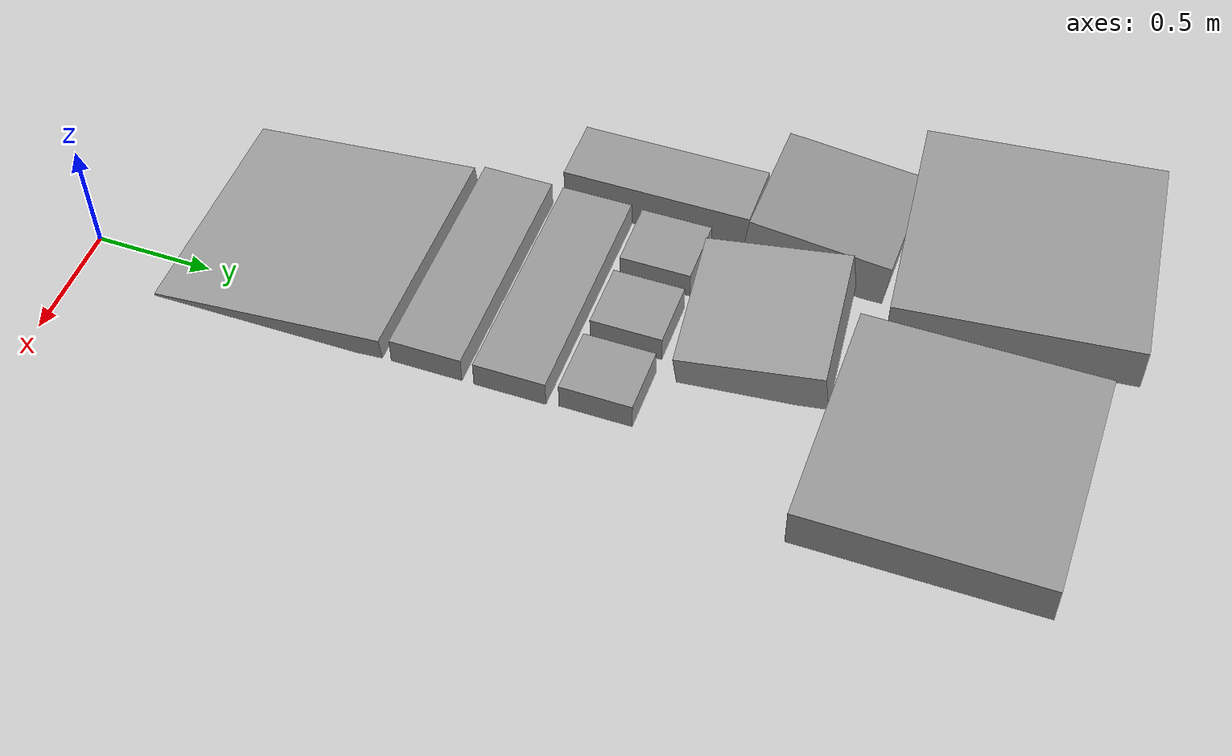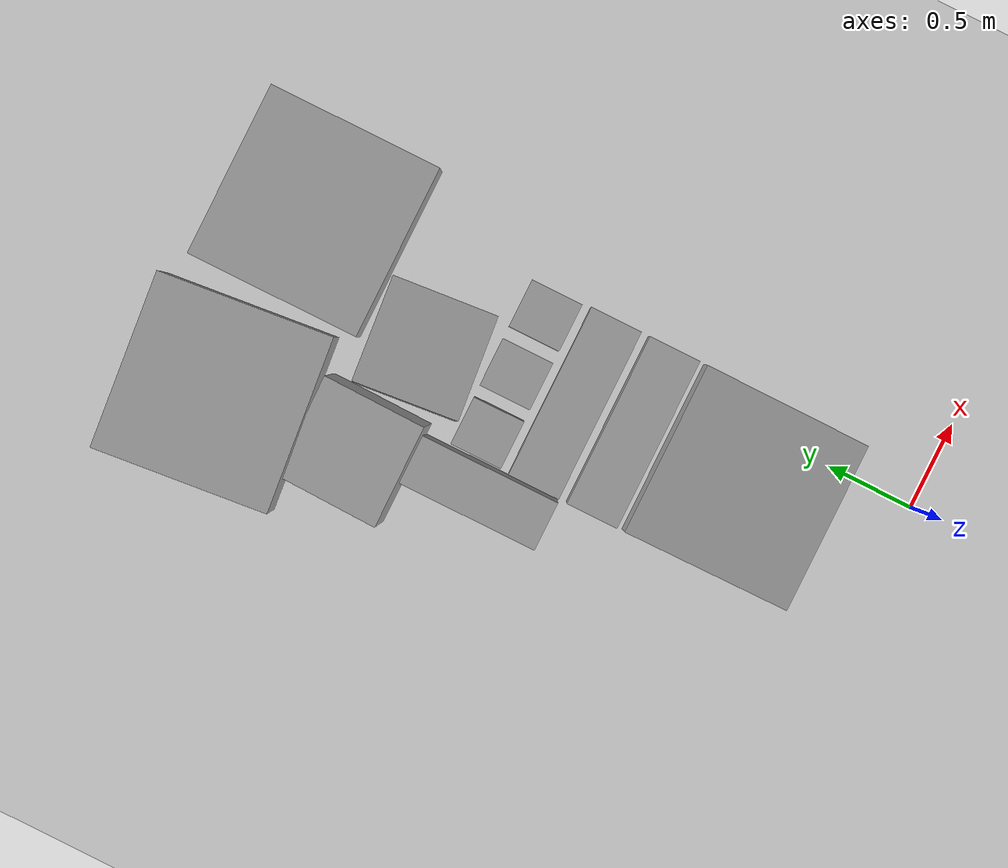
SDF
<sdf version="1.7">
 <world name="default">
  <light name="sun" type="directional">
   <pose>0 0 10 0 -0 0</pose>
   <diffuse>0.8 0.8 0.8 1</diffuse>
   <specular>0.2 0.2 0.2 1</specular>
   <attenuation>
    <range>1000</range>
    <constant>0.9</constant>
    <linear>0.01</linear>
    <quadratic>0.001</quadratic>
   </attenuation>
   <direction>-0.5 0.1 -0.9</direction>
   <spot><inner_angle>0</inner_angle><outer_angle>0</outer_angle><falloff>0</falloff></spot>
  </light>
  <model name="ground_plane">
   <static>1</static>
   <link name="link">
    <collision name="collision">
     <geometry><plane><normal>0 0 1</normal><size>100 100</size></plane></geometry>
     <surface>
      <contact><collide_bitmask>65535</collide_bitmask></contact>
      <friction><ode><mu>100</mu><mu2>50</mu2></ode></friction>
     </surface>
    </collision>
    <visual name="visual">
     <cast_shadows>0</cast_shadows>
     <geometry><plane><normal>0 0 1</normal><size>100 100</size></plane></geometry>
     <material>
      <script><uri>file://media/materials/scripts/gazebo.material</uri><name>Gazebo/Grey</name></script>
     </material>
    </visual>
   </link>
  </model>
  <gravity>0 0 -9.8</gravity>
  <magnetic_field>6e-06 2.3e-05 -4.2e-05</magnetic_field>
  <atmosphere type="adiabatic"/>
  <physics type="ode">
   <max_step_size>0.001</max_step_size>
   <real_time_factor>1</real_time_factor>
   <real_time_update_rate>1000</real_time_update_rate>
   <enable_physics>false</enable_physics>
  </physics>
  <scene><ambient>0.4 0.4 0.4 1</ambient><background>0.7 0.7 0.7 1</background><shadows>1</shadows></scene>
  <spherical_coordinates>
   <surface_model>EARTH_WGS84</surface_model>
   <latitude_deg>0</latitude_deg>
   <longitude_deg>0</longitude_deg>
   <elevation>0</elevation>
   <heading_deg>0</heading_deg>
  </spherical_coordinates>
  <model name="terrain">
   <link name="link_0">
    <inertial>
     <mass>1</mass>
     <inertia>
      <ixx>0.166667</ixx>
      <ixy>0</ixy>
      <ixz>0</ixz>
      <iyy>0.166667</iyy>
      <iyz>0</iyz>
      <izz>0.166667</izz>
     </inertia>
    </inertial>
    <pose>0.181818 -0.819091 -0.01 0 -0 0</pose>
    <visual name="visual">
     <geometry><box><size>1 0.3 0.12</size></box></geometry>
     <material>
      <lighting>1</lighting>
      <script><uri>file://media/materials/scripts/gazebo.material</uri><name>Gazebo/Grey</name></script>
      <shader type="pixel"><normal_map>__default__</normal_map></shader>
      <ambient>0.3 0.3 0.3 1</ambient>
      <diffuse>0.7 0.7 0.7 1</diffuse>
      <specular>0.01 0.01 0.01 1</specular>
      <emissive>0 0 0 1</emissive>
     </material>
    </visual>
    <collision name="collision">
     <geometry><box><size>1 1 1</size></box></geometry>
     <surface>
      <friction>
       <ode><mu>1</mu><mu2>1</mu2><fdir1>0 0 0</fdir1><slip1>0</slip1><slip2>0</slip2></ode>
       <torsional>
        <coefficient>1</coefficient>
        <patch_radius>0</patch_radius>
        <surface_radius>0</surface_radius>
        <use_patch_radius>1</use_patch_radius>
        <ode><slip>0</slip></ode>
       </torsional>
      </friction>
      <bounce><restitution_coefficient>0</restitution_coefficient><threshold>1e+06</threshold></bounce>
      <contact>
       <collide_without_contact>0</collide_without_contact>
       <collide_without_contact_bitmask>1</collide_without_contact_bitmask>
       <collide_bitmask>1</collide_bitmask>
       <ode>
        <soft_cfm>0</soft_cfm>
        <soft_erp>0.2</soft_erp>
        <kp>1e+13</kp>
        <kd>1</kd>
        <max_vel>0.01</max_vel>
        <min_depth>0</min_depth>
       </ode>
       <bullet>
        <split_impulse>1</split_impulse>
        <split_impulse_penetration_threshold>-0.01</split_impulse_penetration_threshold>
        <soft_cfm>0</soft_cfm>
        <soft_erp>0.2</soft_erp>
        <kp>1e+13</kp>
        <kd>1</kd>
       </bullet>
      </contact>
     </surface>
    </collision>
   </link>
   <link name="link_0_clone">
    <inertial>
     <mass>1</mass>
     <inertia>
      <ixx>0.166667</ixx>
      <ixy>0</ixy>
      <ixz>0</ixz>
      <iyy>0.166667</iyy>
      <iyz>0</iyz>
      <izz>0.166667</izz>
     </inertia>
    </inertial>
    <pose>0.181818 -0.469091 -0.01 0 -0 0</pose>
    <visual name="visual">
     <geometry><box><size>1 0.3 0.12</size></box></geometry>
     <material>
      <lighting>1</lighting>
      <script><uri>file://media/materials/scripts/gazebo.material</uri><name>Gazebo/Grey</name></script>
      <shader type="pixel"><normal_map>__default__</normal_map></shader>
      <ambient>0.3 0.3 0.3 1</ambient>
      <diffuse>0.7 0.7 0.7 1</diffuse>
      <specular>0.01 0.01 0.01 1</specular>
      <emissive>0 0 0 1</emissive>
     </material>
    </visual>
    <collision name="collision">
     <geometry><box><size>1 1 1</size></box></geometry>
     <surface>
      <friction>
       <ode><mu>1</mu><mu2>1</mu2><fdir1>0 0 0</fdir1><slip1>0</slip1><slip2>0</slip2></ode>
       <torsional>
        <coefficient>1</coefficient>
        <patch_radius>0</patch_radius>
        <surface_radius>0</surface_radius>
        <use_patch_radius>1</use_patch_radius>
        <ode><slip>0</slip></ode>
       </torsional>
      </friction>
      <bounce><restitution_coefficient>0</restitution_coefficient><threshold>1e+06</threshold></bounce>
      <contact>
       <collide_without_contact>0</collide_without_contact>
       <collide_without_contact_bitmask>1</collide_without_contact_bitmask>
       <collide_bitmask>1</collide_bitmask>
       <ode>
        <soft_cfm>0</soft_cfm>
        <soft_erp>0.2</soft_erp>
        <kp>1e+13</kp>
        <kd>1</kd>
        <max_vel>0.01</max_vel>
        <min_depth>0</min_depth>
       </ode>
       <bullet>
        <split_impulse>1</split_impulse>
        <split_impulse_penetration_threshold>-0.01</split_impulse_penetration_threshold>
        <soft_cfm>0</soft_cfm>
        <soft_erp>0.2</soft_erp>
        <kp>1e+13</kp>
        <kd>1</kd>
       </bullet>
      </contact>
     </surface>
    </collision>
   </link>
   <link name="link_1">
    <inertial>
     <mass>1</mass>
     <inertia>
      <ixx>0.166667</ixx>
      <ixy>0</ixy>
      <ixz>0</ixz>
      <iyy>0.166667</iyy>
      <iyz>0</iyz>
      <izz>0.166667</izz>
     </inertia>
    </inertial>
    <pose>-0.168182 -0.119091 -0.01 0 -0 0</pose>
    <visual name="visual">
     <geometry><box><size>0.28 0.3 0.12</size></box></geometry>
     <material>
      <lighting>1</lighting>
      <script><uri>file://media/materials/scripts/gazebo.material</uri><name>Gazebo/Grey</name></script>
      <shader type="pixel"><normal_map>__default__</normal_map></shader>
      <ambient>0.3 0.3 0.3 1</ambient>
      <diffuse>0.7 0.7 0.7 1</diffuse>
      <specular>0.01 0.01 0.01 1</specular>
      <emissive>0 0 0 1</emissive>
     </material>
    </visual>
    <collision name="collision">
     <geometry><box><size>1 1 1</size></box></geometry>
     <surface>
      <friction>
       <ode><mu>1</mu><mu2>1</mu2><fdir1>0 0 0</fdir1><slip1>0</slip1><slip2>0</slip2></ode>
       <torsional>
        <coefficient>1</coefficient>
        <patch_radius>0</patch_radius>
        <surface_radius>0</surface_radius>
        <use_patch_radius>1</use_patch_radius>
        <ode><slip>0</slip></ode>
       </torsional>
      </friction>
      <bounce><restitution_coefficient>0</restitution_coefficient><threshold>1e+06</threshold></bounce>
      <contact>
       <collide_without_contact>0</collide_without_contact>
       <collide_without_contact_bitmask>1</collide_without_contact_bitmask>
       <collide_bitmask>1</collide_bitmask>
       <ode>
        <soft_cfm>0</soft_cfm>
        <soft_erp>0.2</soft_erp>
        <kp>1e+13</kp>
        <kd>1</kd>
        <max_vel>0.01</max_vel>
        <min_depth>0</min_depth>
       </ode>
       <bullet>
        <split_impulse>1</split_impulse>
        <split_impulse_penetration_threshold>-0.01</split_impulse_penetration_threshold>
        <soft_cfm>0</soft_cfm>
        <soft_erp>0.2</soft_erp>
        <kp>1e+13</kp>
        <kd>1</kd>
       </bullet>
      </contact>
     </surface>
    </collision>
   </link>
   <link name="link_1_clone">
    <inertial>
     <mass>1</mass>
     <inertia>
      <ixx>0.166667</ixx>
      <ixy>0</ixy>
      <ixz>0</ixz>
      <iyy>0.166667</iyy>
      <iyz>0</iyz>
      <izz>0.166667</izz>
     </inertia>
    </inertial>
    <pose>0.181818 -0.119091 -0.01 0 -0 0</pose>
    <visual name="visual">
     <geometry><box><size>0.28 0.3 0.12</size></box></geometry>
     <material>
      <lighting>1</lighting>
      <script><uri>file://media/materials/scripts/gazebo.material</uri><name>Gazebo/Grey</name></script>
      <shader type="pixel"><normal_map>__default__</normal_map></shader>
      <ambient>0.3 0.3 0.3 1</ambient>
      <diffuse>0.7 0.7 0.7 1</diffuse>
      <specular>0.01 0.01 0.01 1</specular>
      <emissive>0 0 0 1</emissive>
     </material>
    </visual>
    <collision name="collision">
     <geometry><box><size>1 1 1</size></box></geometry>
     <surface>
      <friction>
       <ode><mu>1</mu><mu2>1</mu2><fdir1>0 0 0</fdir1><slip1>0</slip1><slip2>0</slip2></ode>
       <torsional>
        <coefficient>1</coefficient>
        <patch_radius>0</patch_radius>
        <surface_radius>0</surface_radius>
        <use_patch_radius>1</use_patch_radius>
        <ode><slip>0</slip></ode>
       </torsional>
      </friction>
      <bounce><restitution_coefficient>0</restitution_coefficient><threshold>1e+06</threshold></bounce>
      <contact>
       <collide_without_contact>0</collide_without_contact>
       <collide_without_contact_bitmask>1</collide_without_contact_bitmask>
       <collide_bitmask>1</collide_bitmask>
       <ode>
        <soft_cfm>0</soft_cfm>
        <soft_erp>0.2</soft_erp>
        <kp>1e+13</kp>
        <kd>1</kd>
        <max_vel>0.01</max_vel>
        <min_depth>0</min_depth>
       </ode>
       <bullet>
        <split_impulse>1</split_impulse>
        <split_impulse_penetration_threshold>-0.01</split_impulse_penetration_threshold>
        <soft_cfm>0</soft_cfm>
        <soft_erp>0.2</soft_erp>
        <kp>1e+13</kp>
        <kd>1</kd>
       </bullet>
      </contact>
     </surface>
    </collision>
   </link>
   <link name="link_1_clone_0">
    <inertial>
     <mass>1</mass>
     <inertia>
      <ixx>0.166667</ixx>
      <ixy>0</ixy>
      <ixz>0</ixz>
      <iyy>0.166667</iyy>
      <iyz>0</iyz>
      <izz>0.166667</izz>
     </inertia>
    </inertial>
    <pose>-0.468182 -0.219091 0.03 0 -0 0</pose>
    <visual name="visual">
     <geometry><box><size>0.28 0.8 0.2</size></box></geometry>
     <material>
      <lighting>1</lighting>
      <script><uri>file://media/materials/scripts/gazebo.material</uri><name>Gazebo/Grey</name></script>
      <shader type="pixel"><normal_map>__default__</normal_map></shader>
      <ambient>0.3 0.3 0.3 1</ambient>
      <diffuse>0.7 0.7 0.7 1</diffuse>
      <specular>0.01 0.01 0.01 1</specular>
      <emissive>0 0 0 1</emissive>
     </material>
    </visual>
    <collision name="collision">
     <geometry><box><size>1 1 1</size></box></geometry>
     <surface>
      <friction>
       <ode><mu>1</mu><mu2>1</mu2><fdir1>0 0 0</fdir1><slip1>0</slip1><slip2>0</slip2></ode>
       <torsional>
        <coefficient>1</coefficient>
        <patch_radius>0</patch_radius>
        <surface_radius>0</surface_radius>
        <use_patch_radius>1</use_patch_radius>
        <ode><slip>0</slip></ode>
       </torsional>
      </friction>
      <bounce><restitution_coefficient>0</restitution_coefficient><threshold>1e+06</threshold></bounce>
      <contact>
       <collide_without_contact>0</collide_without_contact>
       <collide_without_contact_bitmask>1</collide_without_contact_bitmask>
       <collide_bitmask>1</collide_bitmask>
       <ode>
        <soft_cfm>0</soft_cfm>
        <soft_erp>0.2</soft_erp>
        <kp>1e+13</kp>
        <kd>1</kd>
        <max_vel>0.01</max_vel>
        <min_depth>0</min_depth>
       </ode>
       <bullet>
        <split_impulse>1</split_impulse>
        <split_impulse_penetration_threshold>-0.01</split_impulse_penetration_threshold>
        <soft_cfm>0</soft_cfm>
        <soft_erp>0.2</soft_erp>
        <kp>1e+13</kp>
        <kd>1</kd>
       </bullet>
      </contact>
     </surface>
    </collision>
   </link>
   <link name="link_1_clone_clone">
    <inertial>
     <mass>1</mass>
     <inertia>
      <ixx>0.166667</ixx>
      <ixy>0</ixy>
      <ixz>0</ixz>
      <iyy>0.166667</iyy>
      <iyz>0</iyz>
      <izz>0.166667</izz>
     </inertia>
    </inertial>
    <pose>0.531818 -0.119091 -0.01 0 -0 0</pose>
    <visual name="visual">
     <geometry><box><size>0.28 0.3 0.12</size></box></geometry>
     <material>
      <lighting>1</lighting>
      <script><uri>file://media/materials/scripts/gazebo.material</uri><name>Gazebo/Grey</name></script>
      <shader type="pixel"><normal_map>__default__</normal_map></shader>
      <ambient>0.3 0.3 0.3 1</ambient>
      <diffuse>0.7 0.7 0.7 1</diffuse>
      <specular>0.01 0.01 0.01 1</specular>
      <emissive>0 0 0 1</emissive>
     </material>
    </visual>
    <collision name="collision">
     <geometry><box><size>1 1 1</size></box></geometry>
     <surface>
      <friction>
       <ode><mu>1</mu><mu2>1</mu2><fdir1>0 0 0</fdir1><slip1>0</slip1><slip2>0</slip2></ode>
       <torsional>
        <coefficient>1</coefficient>
        <patch_radius>0</patch_radius>
        <surface_radius>0</surface_radius>
        <use_patch_radius>1</use_patch_radius>
        <ode><slip>0</slip></ode>
       </torsional>
      </friction>
      <bounce><restitution_coefficient>0</restitution_coefficient><threshold>1e+06</threshold></bounce>
      <contact>
       <collide_without_contact>0</collide_without_contact>
       <collide_without_contact_bitmask>1</collide_without_contact_bitmask>
       <collide_bitmask>1</collide_bitmask>
       <ode>
        <soft_cfm>0</soft_cfm>
        <soft_erp>0.2</soft_erp>
        <kp>1e+13</kp>
        <kd>1</kd>
        <max_vel>0.01</max_vel>
        <min_depth>0</min_depth>
       </ode>
       <bullet>
        <split_impulse>1</split_impulse>
        <split_impulse_penetration_threshold>-0.01</split_impulse_penetration_threshold>
        <soft_cfm>0</soft_cfm>
        <soft_erp>0.2</soft_erp>
        <kp>1e+13</kp>
        <kd>1</kd>
       </bullet>
      </contact>
     </surface>
    </collision>
   </link>
   <link name="link_2">
    <inertial>
     <mass>1</mass>
     <inertia>
      <ixx>0.166667</ixx>
      <ixy>0</ixy>
      <ixz>0</ixz>
      <iyy>0.166667</iyy>
      <iyz>0</iyz>
      <izz>0.166667</izz>
     </inertia>
    </inertial>
    <pose>0.181818 -1.50909 -0.07 0.1 -0 0</pose>
    <visual name="visual">
     <geometry><box><size>1 1 0.1</size></box></geometry>
     <material>
      <lighting>1</lighting>
      <script><uri>file://media/materials/scripts/gazebo.material</uri><name>Gazebo/Grey</name></script>
      <shader type="pixel"><normal_map>__default__</normal_map></shader>
      <ambient>0.3 0.3 0.3 1</ambient>
      <diffuse>0.7 0.7 0.7 1</diffuse>
      <specular>0.01 0.01 0.01 1</specular>
      <emissive>0 0 0 1</emissive>
     </material>
    </visual>
    <collision name="collision">
     <geometry><box><size>1 1 1</size></box></geometry>
     <surface>
      <friction>
       <ode><mu>1</mu><mu2>1</mu2><fdir1>0 0 0</fdir1><slip1>0</slip1><slip2>0</slip2></ode>
       <torsional>
        <coefficient>1</coefficient>
        <patch_radius>0</patch_radius>
        <surface_radius>0</surface_radius>
        <use_patch_radius>1</use_patch_radius>
        <ode><slip>0</slip></ode>
       </torsional>
      </friction>
      <bounce><restitution_coefficient>0</restitution_coefficient><threshold>1e+06</threshold></bounce>
      <contact>
       <collide_without_contact>0</collide_without_contact>
       <collide_without_contact_bitmask>1</collide_without_contact_bitmask>
       <collide_bitmask>1</collide_bitmask>
       <ode>
        <soft_cfm>0</soft_cfm>
        <soft_erp>0.2</soft_erp>
        <kp>1e+13</kp>
        <kd>1</kd>
        <max_vel>0.01</max_vel>
        <min_depth>0</min_depth>
       </ode>
       <bullet>
        <split_impulse>1</split_impulse>
        <split_impulse_penetration_threshold>-0.01</split_impulse_penetration_threshold>
        <soft_cfm>0</soft_cfm>
        <soft_erp>0.2</soft_erp>
        <kp>1e+13</kp>
        <kd>1</kd>
       </bullet>
      </contact>
     </surface>
    </collision>
   </link>
   <link name="link_3">
    <inertial>
     <mass>1</mass>
     <inertia>
      <ixx>0.166667</ixx>
      <ixy>0</ixy>
      <ixz>0</ixz>
      <iyy>0.166667</iyy>
      <iyz>0</iyz>
      <izz>0.166667</izz>
     </inertia>
    </inertial>
    <pose>0.081818 0.380909 0.03 0.1 0.1 0.1</pose>
    <visual name="visual">
     <geometry><box><size>0.6 0.6 0.2</size></box></geometry>
     <material>
      <lighting>1</lighting>
      <script><uri>file://media/materials/scripts/gazebo.material</uri><name>Gazebo/Grey</name></script>
      <shader type="pixel"><normal_map>__default__</normal_map></shader>
      <ambient>0.3 0.3 0.3 1</ambient>
      <diffuse>0.7 0.7 0.7 1</diffuse>
      <specular>0.01 0.01 0.01 1</specular>
      <emissive>0 0 0 1</emissive>
     </material>
    </visual>
    <collision name="collision">
     <geometry><box><size>1 1 1</size></box></geometry>
     <surface>
      <friction>
       <ode><mu>1</mu><mu2>1</mu2><fdir1>0 0 0</fdir1><slip1>0</slip1><slip2>0</slip2></ode>
       <torsional>
        <coefficient>1</coefficient>
        <patch_radius>0</patch_radius>
        <surface_radius>0</surface_radius>
        <use_patch_radius>1</use_patch_radius>
        <ode><slip>0</slip></ode>
       </torsional>
      </friction>
      <bounce><restitution_coefficient>0</restitution_coefficient><threshold>1e+06</threshold></bounce>
      <contact>
       <collide_without_contact>0</collide_without_contact>
       <collide_without_contact_bitmask>1</collide_without_contact_bitmask>
       <collide_bitmask>1</collide_bitmask>
       <ode>
        <soft_cfm>0</soft_cfm>
        <soft_erp>0.2</soft_erp>
        <kp>1e+13</kp>
        <kd>1</kd>
        <max_vel>0.01</max_vel>
        <min_depth>0</min_depth>
       </ode>
       <bullet>
        <split_impulse>1</split_impulse>
        <split_impulse_penetration_threshold>-0.01</split_impulse_penetration_threshold>
        <soft_cfm>0</soft_cfm>
        <soft_erp>0.2</soft_erp>
        <kp>1e+13</kp>
        <kd>1</kd>
       </bullet>
      </contact>
     </surface>
    </collision>
   </link>
   <link name="link_3_clone">
    <inertial>
     <mass>1</mass>
     <inertia>
      <ixx>0.166667</ixx>
      <ixy>0</ixy>
      <ixz>0</ixz>
      <iyy>0.166667</iyy>
      <iyz>0</iyz>
      <izz>0.166667</izz>
     </inertia>
    </inertial>
    <pose>-0.568182 0.480909 0.01 -0.1 -0.1 0</pose>
    <visual name="visual">
     <geometry><box><size>0.6 0.6 0.2</size></box></geometry>
     <material>
      <lighting>1</lighting>
      <script><uri>file://media/materials/scripts/gazebo.material</uri><name>Gazebo/Grey</name></script>
      <shader type="pixel"><normal_map>__default__</normal_map></shader>
      <ambient>0.3 0.3 0.3 1</ambient>
      <diffuse>0.7 0.7 0.7 1</diffuse>
      <specular>0.01 0.01 0.01 1</specular>
      <emissive>0 0 0 1</emissive>
     </material>
    </visual>
    <collision name="collision">
     <geometry><box><size>1 1 1</size></box></geometry>
     <surface>
      <friction>
       <ode><mu>1</mu><mu2>1</mu2><fdir1>0 0 0</fdir1><slip1>0</slip1><slip2>0</slip2></ode>
       <torsional>
        <coefficient>1</coefficient>
        <patch_radius>0</patch_radius>
        <surface_radius>0</surface_radius>
        <use_patch_radius>1</use_patch_radius>
        <ode><slip>0</slip></ode>
       </torsional>
      </friction>
      <bounce><restitution_coefficient>0</restitution_coefficient><threshold>1e+06</threshold></bounce>
      <contact>
       <collide_without_contact>0</collide_without_contact>
       <collide_without_contact_bitmask>1</collide_without_contact_bitmask>
       <collide_bitmask>1</collide_bitmask>
       <ode>
        <soft_cfm>0</soft_cfm>
        <soft_erp>0.2</soft_erp>
        <kp>1e+13</kp>
        <kd>1</kd>
        <max_vel>0.01</max_vel>
        <min_depth>0</min_depth>
       </ode>
       <bullet>
        <split_impulse>1</split_impulse>
        <split_impulse_penetration_threshold>-0.01</split_impulse_penetration_threshold>
        <soft_cfm>0</soft_cfm>
        <soft_erp>0.2</soft_erp>
        <kp>1e+13</kp>
        <kd>1</kd>
       </bullet>
      </contact>
     </surface>
    </collision>
   </link>
   <link name="link_4">
    <inertial>
     <mass>1</mass>
     <inertia>
      <ixx>0.166667</ixx>
      <ixy>0</ixy>
      <ixz>0</ixz>
      <iyy>0.166667</iyy>
      <iyz>0</iyz>
      <izz>0.166667</izz>
     </inertia>
    </inertial>
    <pose>-0.618182 1.28091 0.03 0 -0 0.1</pose>
    <visual name="visual">
     <geometry><box><size>1 1 0.2</size></box></geometry>
     <material>
      <lighting>1</lighting>
      <script><uri>file://media/materials/scripts/gazebo.material</uri><name>Gazebo/Grey</name></script>
      <shader type="pixel"><normal_map>__default__</normal_map></shader>
      <ambient>0.3 0.3 0.3 1</ambient>
      <diffuse>0.7 0.7 0.7 1</diffuse>
      <specular>0.01 0.01 0.01 1</specular>
      <emissive>0 0 0 1</emissive>
     </material>
    </visual>
    <collision name="collision">
     <geometry><box><size>1 1 1</size></box></geometry>
     <surface>
      <friction>
       <ode><mu>1</mu><mu2>1</mu2><fdir1>0 0 0</fdir1><slip1>0</slip1><slip2>0</slip2></ode>
       <torsional>
        <coefficient>1</coefficient>
        <patch_radius>0</patch_radius>
        <surface_radius>0</surface_radius>
        <use_patch_radius>1</use_patch_radius>
        <ode><slip>0</slip></ode>
       </torsional>
      </friction>
      <bounce><restitution_coefficient>0</restitution_coefficient><threshold>1e+06</threshold></bounce>
      <contact>
       <collide_without_contact>0</collide_without_contact>
       <collide_without_contact_bitmask>1</collide_without_contact_bitmask>
       <collide_bitmask>1</collide_bitmask>
       <ode>
        <soft_cfm>0</soft_cfm>
        <soft_erp>0.2</soft_erp>
        <kp>1e+13</kp>
        <kd>1</kd>
        <max_vel>0.01</max_vel>
        <min_depth>0</min_depth>
       </ode>
       <bullet>
        <split_impulse>1</split_impulse>
        <split_impulse_penetration_threshold>-0.01</split_impulse_penetration_threshold>
        <soft_cfm>0</soft_cfm>
        <soft_erp>0.2</soft_erp>
        <kp>1e+13</kp>
        <kd>1</kd>
       </bullet>
      </contact>
     </surface>
    </collision>
   </link>
   <link name="link_5">
    <inertial>
     <mass>1</mass>
     <inertia>
      <ixx>0.166667</ixx>
      <ixy>0</ixy>
      <ixz>0</ixz>
      <iyy>0.166667</iyy>
      <iyz>0</iyz>
      <izz>0.166667</izz>
     </inertia>
    </inertial>
    <pose>0.481818 1.23091 0.02 0 -0 0</pose>
    <visual name="visual">
     <geometry><box><size>1 1 0.18</size></box></geometry>
     <material>
      <lighting>1</lighting>
      <script><uri>file://media/materials/scripts/gazebo.material</uri><name>Gazebo/Grey</name></script>
      <shader type="pixel"><normal_map>__default__</normal_map></shader>
      <ambient>0.3 0.3 0.3 1</ambient>
      <diffuse>0.7 0.7 0.7 1</diffuse>
      <specular>0.01 0.01 0.01 1</specular>
      <emissive>0 0 0 1</emissive>
     </material>
    </visual>
    <collision name="collision">
     <geometry><box><size>1 1 1</size></box></geometry>
     <surface>
      <friction>
       <ode><mu>1</mu><mu2>1</mu2><fdir1>0 0 0</fdir1><slip1>0</slip1><slip2>0</slip2></ode>
       <torsional>
        <coefficient>1</coefficient>
        <patch_radius>0</patch_radius>
        <surface_radius>0</surface_radius>
        <use_patch_radius>1</use_patch_radius>
        <ode><slip>0</slip></ode>
       </torsional>
      </friction>
      <bounce><restitution_coefficient>0</restitution_coefficient><threshold>1e+06</threshold></bounce>
      <contact>
       <collide_without_contact>0</collide_without_contact>
       <collide_without_contact_bitmask>1</collide_without_contact_bitmask>
       <collide_bitmask>1</collide_bitmask>
       <ode>
        <soft_cfm>0</soft_cfm>
        <soft_erp>0.2</soft_erp>
        <kp>1e+13</kp>
        <kd>1</kd>
        <max_vel>0.01</max_vel>
        <min_depth>0</min_depth>
       </ode>
       <bullet>
        <split_impulse>1</split_impulse>
        <split_impulse_penetration_threshold>-0.01</split_impulse_penetration_threshold>
        <soft_cfm>0</soft_cfm>
        <soft_erp>0.2</soft_erp>
        <kp>1e+13</kp>
        <kd>1</kd>
       </bullet>
      </contact>
     </surface>
    </collision>
   </link>
   <static>0</static>
   <pose>-0.486256 2.36575 0.076603 0 -0 0</pose>
   <sensor name="kinect_camera" type="camera">
    <pose>0 0 1 0 0 0</pose>
    <camera>
     <horizontal_fov>1.047</horizontal_fov>
     <image><width>640</width><height>480</height><format>R8G8B8</format></image>
     <clip><near>0.1</near><far>100</far></clip>
    </camera>
    <plugin name="kinect_plugin" filename="libgazebo_ros_camera.so">
     <camera_name>kinect_camera</camera_name>
     <image_topic>camera/image_raw</image_topic>
     <camera_info_topic>camera/camera_info</camera_info_topic>
    </plugin>
   </sensor>
  </model>
 </world>
</sdf>
